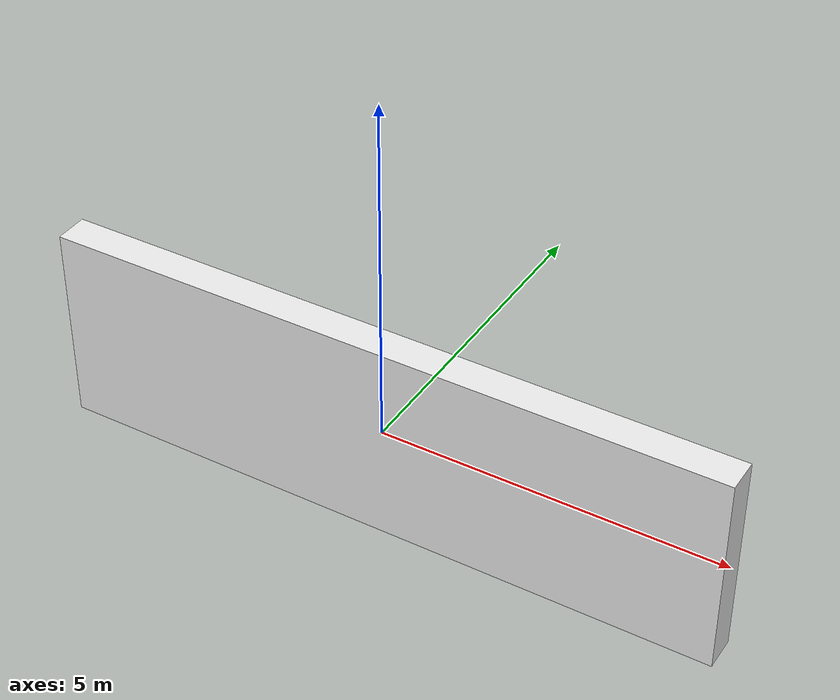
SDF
<?xml version="1.0" ?>
<sdf version="1.5">
  <model name="mbzirc_bin">
    <static>true</static>
    <link name="link">
      <collision name="collision">
        <geometry>
          <box>
            <size>10 0.5 3</size>
          </box>
        </geometry>
      </collision>
      <visual name="visual">
        <geometry>
          <box>
            <size>10 0.5 3</size>
          </box>
        </geometry>
        <material>
          <script>
            <name>Gazebo/White</name>
            <uri>file://media/materials/scripts/gazebo.material</uri>
          </script>
        </material>
      </visual>
    </link>
  </model>
</sdf>
